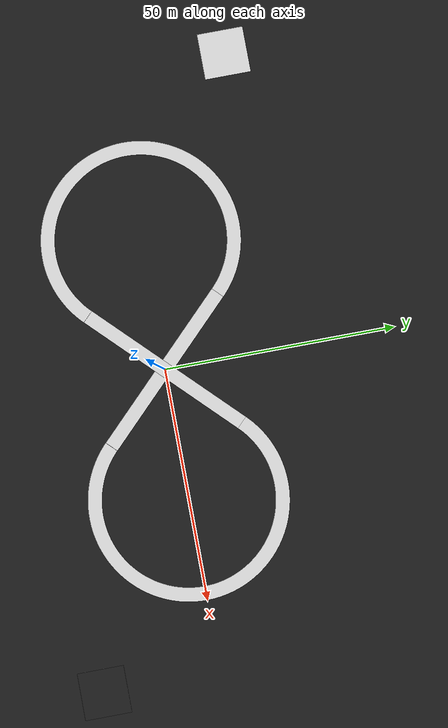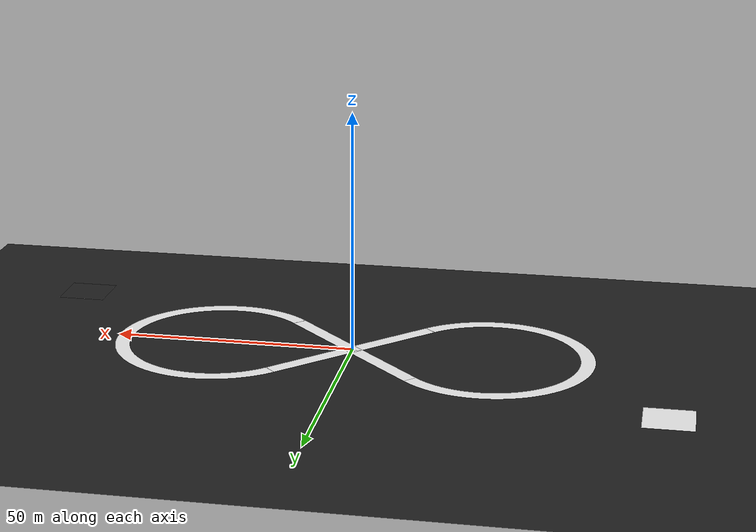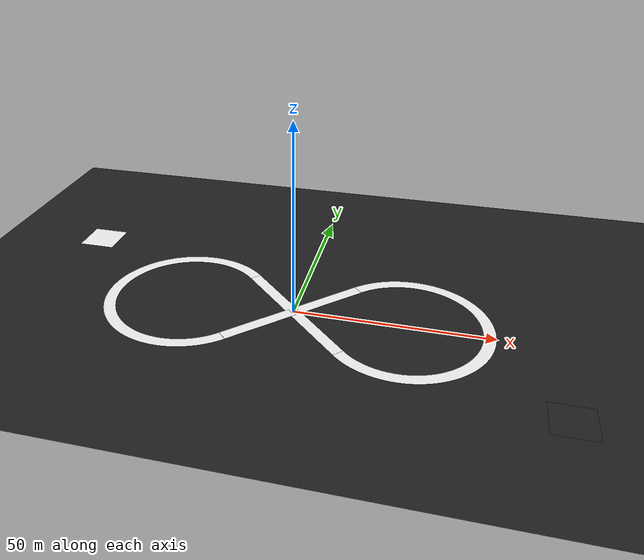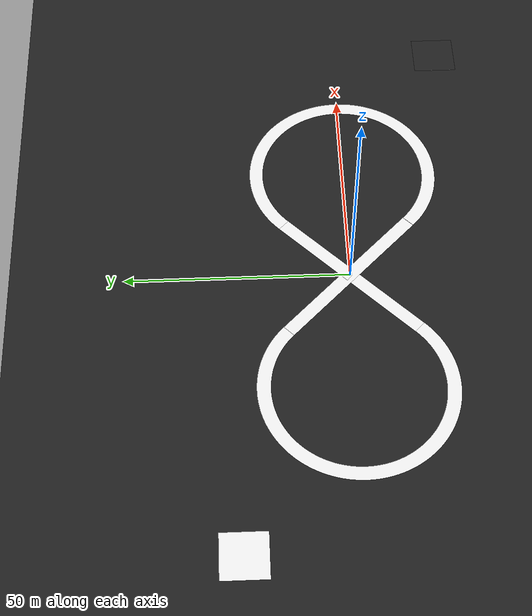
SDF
<sdf version="1.4">
 <world name="animated_box_world">
  <include><uri>model://mbzirc</uri></include>
  <include><uri>model://sun</uri></include>
 </world>
</sdf>

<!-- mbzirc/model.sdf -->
<sdf version="1.4">
  <model name="mbzirc">
    <static>true</static>

    <link name="field">
      <pose>0 0 0.01 0 0 0</pose>
      <collision name="collision">
        <geometry>
          <plane>
            <normal>0 0 1</normal>
            <size>100 60</size>
          </plane>
        </geometry>
        <surface>
          <friction>
            <ode>
              <mu>100</mu>  <!--为什么这么大?-->
              <mu2>50</mu2>
            </ode>
          </friction>
        </surface>

      </collision>

      <visual name="carpet">
        <cast_shadows>false</cast_shadows>
        <geometry>
          <plane>
            <normal>0 0 1</normal>
            <size>100 60</size>
          </plane>
        </geometry>
  <material>
          <script>
            <uri>file://media/materials/scripts/gazebo.material</uri> <!--系统自带的？-->
            <name>Gazebo/Black</name>
          </script>
  </material>
      </visual>

<visual name="startzone">
        <pose>65 -25 0.011 0 0 0</pose>
        <cast_shadows>false</cast_shadows>
        <geometry>
          <plane>
            <normal>0 0 1</normal>
            <size>10 10</size>
          </plane>
        </geometry>
        <material>
          <script>
            <uri>file://media/materials/scripts/gazebo.material</uri>
            <name>Gazebo/Black</name>
          </script>
        </material>
      </visual>

<visual name="dropzone">
        <pose>-65 25 0.011 0 0 0</pose>
        <cast_shadows>false</cast_shadows>
        <geometry>
          <plane>
            <normal>0 0 1</normal>
            <size>10 10</size>
          </plane>
        </geometry>
        <material>
          <script>
            <uri>file://media/materials/scripts/gazebo.material</uri>
            <name>Gazebo/White</name>
          </script>
        </material>
      </visual>

  <visual name="diag_1"> <!--northeast-->
        <pose>0 0 0.011 0 0 0.785</pose>
        <cast_shadows>false</cast_shadows>
        <geometry>
          <plane>
            <normal>0 0 1</normal>
            <size>40 3</size>
          </plane>
        </geometry>
        <material>
          <script>
            <uri>file://media/materials/scripts/gazebo.material</uri>
            <name>Gazebo/White</name>
          </script>
        </material>
      </visual>

  <visual name="diag_2">  <!--northwest-->
        <pose>0 0 0.011 0 0 -0.785</pose>
        <cast_shadows>false</cast_shadows>
        <geometry>
          <plane>
            <normal>0 0 1</normal>
            <size>40 3</size>
          </plane>
        </geometry>
        <material>
          <script>
            <uri>file://media/materials/scripts/gazebo.material</uri>
            <name>Gazebo/White</name>
          </script>
        </material>
      </visual>

<visual name="right_circle1">
        <pose>14.14 0 0.011 0 0 0</pose>
        <cast_shadows>false</cast_shadows>
        <geometry>
          <mesh>
            <scale>1 1 1</scale>
            <uri>model://mbzirc/meshes/zch270-you.dae</uri>
          </mesh>
        </geometry>
        <material>
          <script>
            <uri>file://media/materials/scripts/gazebo.material</uri>
            <name>Gazebo/White</name>
          </script>
        </material>
      </visual>

 <visual name="left_circle">
        <pose>-14.14 0 0.011 0 0 0</pose>
        <cast_shadows>false</cast_shadows>
        <geometry>
          <mesh>
            <scale>1 1 1</scale>
            <uri>model://mbzirc/meshes/zch270-zuo.dae</uri>
          </mesh>
        </geometry>
        <material>
          <script>
            <uri>file://media/materials/scripts/gazebo.material</uri>
            <name>Gazebo/White</name>
          </script>
        </material>
      </visual>

    </link>

  </model>
</sdf>
